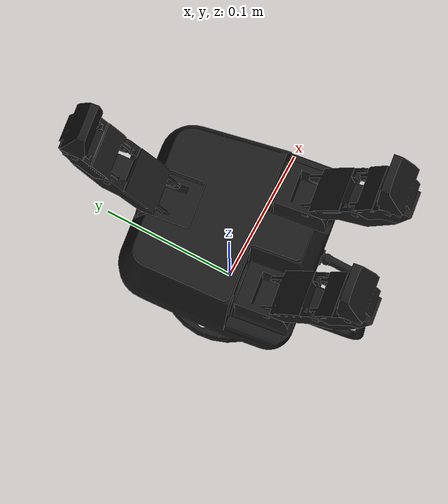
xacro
<?xml version="1.0"?>
<robot xmlns:xacro="http://www.ros.org/wiki/xacro" name="right_robotiq_gripper_3_finger_adaptive">
  <link name="right_gripper_base_link">
    <visual>
      <origin xyz="0 0 0" rpy="0 0 0" />
      <geometry>
        <mesh filename="package://robotiq_gripper_3_finger_adaptive_support/meshes/gripper_base_link.STL" />
      </geometry>
      <material name="">
        <color rgba="0.10196 0.10196 0.10196 1" />
      </material>
    </visual>
    <collision>
      <origin xyz="0 0 0" rpy="0 0 0" />
      <geometry>
        <mesh filename="package://robotiq_gripper_3_finger_adaptive_support/meshes/gripper_base_link.STL" />
      </geometry>
    </collision>
  </link>

  <xacro:macro name="right_gripper_finger_link" params="finger_name link_name type xyz rpy parent axis lower upper" >
  <link name="right_gripper_finger_link_${finger_name}_${link_name}">
    <visual>
      <origin xyz="0 0 0" rpy="0 0 0" />
      <geometry>
        <mesh filename="package://robotiq_gripper_3_finger_adaptive_support/meshes/gripper_finger_link_${link_name}.STL" />
      </geometry>
      <material name="">
        <color rgba="0.10196 0.10196 0.10196 1" />
      </material>
    </visual>
    <collision>
      <origin xyz="0 0 0" rpy="0 0 0" />
      <geometry>
        <mesh filename="package://robotiq_gripper_3_finger_adaptive_support/meshes/gripper_finger_link_${link_name}.STL" />
      </geometry>
    </collision>
  </link>
  <joint name="right_gripper_finger_joint_${finger_name}_${link_name}" type="${type}">
    <origin xyz="${xyz}" rpy="${rpy}" />
    <parent link="${parent}" />
    <child link="right_gripper_finger_link_${finger_name}_${link_name}" />
    <axis xyz="${axis}" />
    <limit lower="${lower}" upper="${upper}" effort="1000"
      velocity="${upper}" />
  </joint>
  </xacro:macro>

  <xacro:right_gripper_finger_link finger_name="a" link_name="1" type="revolute" xyz="0.044008 -0.054539 0.13897" rpy="${pi/2} 0.0079495 -3.0107" parent="right_gripper_base_link" axis="0 0 -1" lower="-0.1755" upper="0.1744"/>
  <xacro:right_gripper_finger_link finger_name="a" link_name="2" type="revolute" xyz="0.011219 0.021604 0.014288" rpy="${pi} -${pi/2} ${pi}" parent="right_gripper_finger_link_a_1" axis="0 0 -1" lower="0" upper="1.4801"/>
  <xacro:right_gripper_finger_link finger_name="a" link_name="3" type="revolute" xyz="-0.03278 0.046815 -0.0007872" rpy="0 0 -0.05236" parent="right_gripper_finger_link_a_2" axis="0 0 -1" lower="0" upper="1.2322"/>
  <xacro:right_gripper_finger_link finger_name="a" link_name="4" type="revolute" xyz="-0.021853 0.03121 1.28E-05" rpy="0 0 0.05236" parent="right_gripper_finger_link_a_3" axis="0 0 -1" lower="-1.27" upper="0.6757"/>

  <xacro:right_gripper_finger_link finger_name="b" link_name="1" type="revolute" xyz="-0.028392 -0.064071 0.13897" rpy="${pi/2} 0.0079495 -3.0107" parent="right_gripper_base_link" axis="0 0 1" lower="-0.1755" upper="0.1744"/>
  <xacro:right_gripper_finger_link finger_name="b" link_name="2" type="revolute" xyz="0.011219 0.021604 0.014288" rpy="${pi} -${pi/2} ${pi}" parent="right_gripper_finger_link_b_1" axis="0 0 -1" lower="0" upper="1.4801"/>
  <xacro:right_gripper_finger_link finger_name="b" link_name="3" type="revolute" xyz="-0.03278 0.046815 -0.0007872" rpy="0 0 -0.05236" parent="right_gripper_finger_link_b_2" axis="0 0 -1" lower="0" upper="1.2322"/>
  <xacro:right_gripper_finger_link finger_name="b" link_name="4" type="revolute" xyz="-0.021853 0.03121 1.28E-05" rpy="0 0 0.05236" parent="right_gripper_finger_link_b_3" axis="0 0 -1" lower="-1.27" upper="0.6757"/>

  <xacro:right_gripper_finger_link finger_name="c" link_name="1" type="fixed" xyz="-0.007695 0.058449 0.13897" rpy="${pi/2} 0.0079495 0.1309" parent="right_gripper_base_link" axis="0 0 0" lower="0" upper="0"/>
  <xacro:right_gripper_finger_link finger_name="c" link_name="2" type="revolute" xyz="0.011219 0.021604 0.014288" rpy="${pi} -${pi/2} ${pi}" parent="right_gripper_finger_link_c_1" axis="0 0 -1" lower="0" upper="1.4801"/>
  <xacro:right_gripper_finger_link finger_name="c" link_name="3" type="revolute" xyz="-0.03278 0.046815 -0.0007872" rpy="0 0 -0.05236" parent="right_gripper_finger_link_c_2" axis="0 0 -1" lower="0" upper="1.2322"/>
  <xacro:right_gripper_finger_link finger_name="c" link_name="4" type="revolute" xyz="-0.021853 0.03121 1.28E-05" rpy="0 0 0.05236" parent="right_gripper_finger_link_c_3" axis="0 0 -1" lower="-1.27" upper="0.6757"/>
  </robot>
